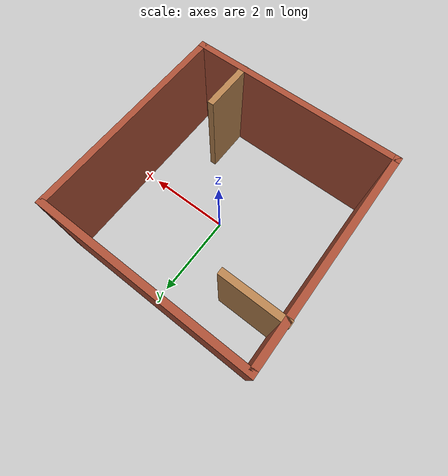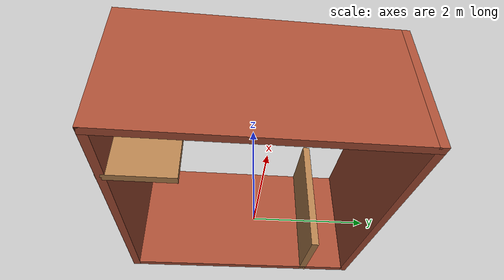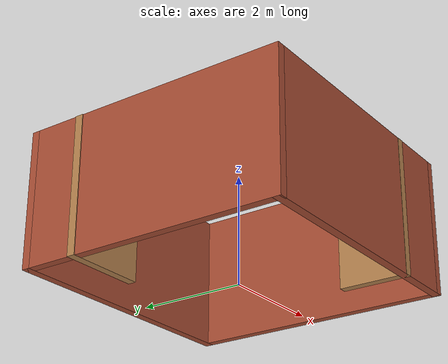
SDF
<?xml version='1.0'?>
<sdf version='1.7'>
  <model name='five'>
    <pose>-0.096994 -0.034718 0 0 -0 0</pose>
    <link name='Wall_11'>
      <collision name='Wall_11_Collision'>
        <geometry>
          <box>
            <size>1.25 0.15 2.5</size>
          </box>
        </geometry>
        <pose>0 0 1.25 0 -0 0</pose>
      </collision>
      <visual name='Wall_11_Visual'>
        <pose>0 0 1.25 0 -0 0</pose>
        <geometry>
          <box>
            <size>1.25 0.15 2.5</size>
          </box>
        </geometry>
        <material>
          <script>
            <uri>file://media/materials/scripts/gazebo.material</uri>
            <name>Gazebo/Wood</name>
          </script>
          <ambient>1 1 1 1</ambient>
        </material>
        <meta>
          <layer>0</layer>
        </meta>
      </visual>
      <pose>1.30903 -1.87717 0 0 -0 1.5708</pose>
    </link>
    <link name='Wall_13'>
      <collision name='Wall_13_Collision'>
        <geometry>
          <box>
            <size>1.5 0.15 2.5</size>
          </box>
        </geometry>
        <pose>0 0 1.25 0 -0 0</pose>
      </collision>
      <visual name='Wall_13_Visual'>
        <pose>0 0 1.25 0 -0 0</pose>
        <geometry>
          <box>
            <size>1.5 0.15 2.5</size>
          </box>
        </geometry>
        <material>
          <script>
            <uri>file://media/materials/scripts/gazebo.material</uri>
            <name>Gazebo/Wood</name>
          </script>
          <ambient>1 1 1 1</ambient>
        </material>
        <meta>
          <layer>0</layer>
        </meta>
      </visual>
      <pose>-1.75709 1.43464 0 0 -0 0</pose>
    </link>
    <link name='Wall_5'>
      <collision name='Wall_5_Collision'>
        <geometry>
          <box>
            <size>5 0.15 2.5</size>
          </box>
        </geometry>
        <pose>0 0 1.25 0 -0 0</pose>
      </collision>
      <visual name='Wall_5_Visual'>
        <pose>0 0 1.25 0 -0 0</pose>
        <geometry>
          <box>
            <size>5 0.15 2.5</size>
          </box>
        </geometry>
        <material>
          <script>
            <uri>file://media/materials/scripts/gazebo.material</uri>
            <name>Gazebo/Bricks</name>
          </script>
          <ambient>1 1 1 1</ambient>
        </material>
        <meta>
          <layer>0</layer>
        </meta>
      </visual>
      <pose>2.43209 0.002168 0 0 -0 1.5708</pose>
    </link>
    <link name='Wall_6'>
      <collision name='Wall_6_Collision'>
        <geometry>
          <box>
            <size>5 0.15 2.5</size>
          </box>
        </geometry>
        <pose>0 0 1.25 0 -0 0</pose>
      </collision>
      <visual name='Wall_6_Visual'>
        <pose>0 0 1.25 0 -0 0</pose>
        <geometry>
          <box>
            <size>5 0.15 2.5</size>
          </box>
        </geometry>
        <material>
          <script>
            <uri>file://media/materials/scripts/gazebo.material</uri>
            <name>Gazebo/Bricks</name>
          </script>
          <ambient>1 1 1 1</ambient>
        </material>
        <meta>
          <layer>0</layer>
        </meta>
      </visual>
      <pose>0.007094 2.42717 0 0 -0 3.14159</pose>
    </link>
    <link name='Wall_7'>
      <collision name='Wall_7_Collision'>
        <geometry>
          <box>
            <size>5 0.15 2.5</size>
          </box>
        </geometry>
        <pose>0 0 1.25 0 -0 0</pose>
      </collision>
      <visual name='Wall_7_Visual'>
        <pose>0 0 1.25 0 -0 0</pose>
        <geometry>
          <box>
            <size>5 0.15 2.5</size>
          </box>
        </geometry>
        <material>
          <script>
            <uri>file://media/materials/scripts/gazebo.material</uri>
            <name>Gazebo/Bricks</name>
          </script>
          <ambient>1 1 1 1</ambient>
        </material>
        <meta>
          <layer>0</layer>
        </meta>
      </visual>
      <pose>-2.41791 0.002168 0 0 -0 -1.5708</pose>
    </link>
    <link name='Wall_9'>
      <collision name='Wall_9_Collision'>
        <geometry>
          <box>
            <size>5 0.15 2.5</size>
          </box>
        </geometry>
        <pose>0 0 1.25 0 -0 0</pose>
      </collision>
      <visual name='Wall_9_Visual'>
        <pose>0 0 1.25 0 -0 0</pose>
        <geometry>
          <box>
            <size>5 0.15 2.5</size>
          </box>
        </geometry>
        <material>
          <script>
            <uri>file://media/materials/scripts/gazebo.material</uri>
            <name>Gazebo/Bricks</name>
          </script>
          <ambient>1 1 1 1</ambient>
        </material>
        <meta>
          <layer>0</layer>
        </meta>
      </visual>
      <pose>0.007094 -2.42283 0 0 -0 0</pose>
    </link>
    <static>1</static>
  </model>
</sdf>
